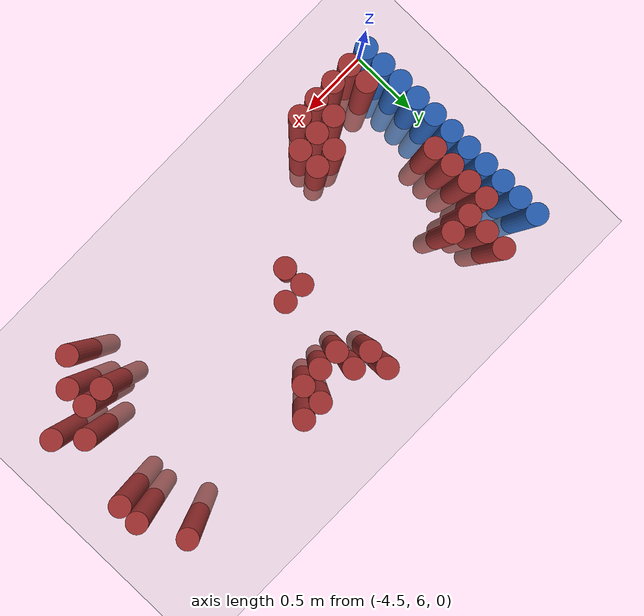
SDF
<sdf version="1.6">
 <world name="default">
  <model name="ground_plane">
   <static>1</static>
   <link name="link">
    <collision name="collision">
     <geometry><plane><normal>0 0 1</normal><size>100 100</size></plane></geometry>
     <surface><friction><ode><mu>100</mu><mu2>50</mu2></ode></friction></surface>
    </collision>
    <visual name="visual">
     <cast_shadows>0</cast_shadows>
     <geometry><plane><normal>0 0 1</normal><size>100 100</size></plane></geometry>
     <material>
      <script><uri>file://media/materials/scripts/gazebo.material</uri><name>Gazebo/Grey</name></script>
     </material>
    </visual>
   </link>
  </model>
  <model name="unit_cylinder_102">
   <static>1</static>
   <pose>-4.425000 6.075000 0.000000 0.000000 0.000000 0.000000</pose>
   <link name="link">
    <inertial>
     <mass>1</mass>
     <inertia><ixx>0.145833</ixx><ixy>0</ixy><ixz>0</ixz><iyy>0.145833</iyy><iyz>0</iyz><izz>0.125</izz></inertia>
    </inertial>
    <collision name="collision">
     <geometry><cylinder><radius>0.075000</radius><length>1</length></cylinder></geometry>
    </collision>
    <visual name="visual">
     <geometry><cylinder><radius>0.075000</radius><length>1</length></cylinder></geometry>
     <material>
      <ambient>0.152000 0.379000 0.720000 1</ambient>
      <diffuse>0.152000 0.379000 0.720000 1</diffuse>
     </material>
     <material>
      <script><name>Gazebo/Grey</name><uri>file://media/materials/scripts/gazebo.material</uri></script>
     </material>
    </visual>
   </link>
  </model>
  <model name="unit_cylinder_103">
   <static>1</static>
   <pose>-4.425000 6.225000 0.000000 0.000000 0.000000 0.000000</pose>
   <link name="link">
    <inertial>
     <mass>1</mass>
     <inertia><ixx>0.145833</ixx><ixy>0</ixy><ixz>0</ixz><iyy>0.145833</iyy><iyz>0</iyz><izz>0.125</izz></inertia>
    </inertial>
    <collision name="collision">
     <geometry><cylinder><radius>0.075000</radius><length>1</length></cylinder></geometry>
    </collision>
    <visual name="visual">
     <geometry><cylinder><radius>0.075000</radius><length>1</length></cylinder></geometry>
     <material>
      <ambient>0.152000 0.379000 0.720000 1</ambient>
      <diffuse>0.152000 0.379000 0.720000 1</diffuse>
     </material>
     <material>
      <script><name>Gazebo/Grey</name><uri>file://media/materials/scripts/gazebo.material</uri></script>
     </material>
    </visual>
   </link>
  </model>
  <model name="unit_cylinder_104">
   <static>1</static>
   <pose>-4.425000 6.375000 0.000000 0.000000 0.000000 0.000000</pose>
   <link name="link">
    <inertial>
     <mass>1</mass>
     <inertia><ixx>0.145833</ixx><ixy>0</ixy><ixz>0</ixz><iyy>0.145833</iyy><iyz>0</iyz><izz>0.125</izz></inertia>
    </inertial>
    <collision name="collision">
     <geometry><cylinder><radius>0.075000</radius><length>1</length></cylinder></geometry>
    </collision>
    <visual name="visual">
     <geometry><cylinder><radius>0.075000</radius><length>1</length></cylinder></geometry>
     <material>
      <ambient>0.152000 0.379000 0.720000 1</ambient>
      <diffuse>0.152000 0.379000 0.720000 1</diffuse>
     </material>
     <material>
      <script><name>Gazebo/Grey</name><uri>file://media/materials/scripts/gazebo.material</uri></script>
     </material>
    </visual>
   </link>
  </model>
  <model name="unit_cylinder_105">
   <static>1</static>
   <pose>-4.425000 6.525000 0.000000 0.000000 0.000000 0.000000</pose>
   <link name="link">
    <inertial>
     <mass>1</mass>
     <inertia><ixx>0.145833</ixx><ixy>0</ixy><ixz>0</ixz><iyy>0.145833</iyy><iyz>0</iyz><izz>0.125</izz></inertia>
    </inertial>
    <collision name="collision">
     <geometry><cylinder><radius>0.075000</radius><length>1</length></cylinder></geometry>
    </collision>
    <visual name="visual">
     <geometry><cylinder><radius>0.075000</radius><length>1</length></cylinder></geometry>
     <material>
      <ambient>0.152000 0.379000 0.720000 1</ambient>
      <diffuse>0.152000 0.379000 0.720000 1</diffuse>
     </material>
     <material>
      <script><name>Gazebo/Grey</name><uri>file://media/materials/scripts/gazebo.material</uri></script>
     </material>
    </visual>
   </link>
  </model>
  <model name="unit_cylinder_106">
   <static>1</static>
   <pose>-4.425000 6.675000 0.000000 0.000000 0.000000 0.000000</pose>
   <link name="link">
    <inertial>
     <mass>1</mass>
     <inertia><ixx>0.145833</ixx><ixy>0</ixy><ixz>0</ixz><iyy>0.145833</iyy><iyz>0</iyz><izz>0.125</izz></inertia>
    </inertial>
    <collision name="collision">
     <geometry><cylinder><radius>0.075000</radius><length>1</length></cylinder></geometry>
    </collision>
    <visual name="visual">
     <geometry><cylinder><radius>0.075000</radius><length>1</length></cylinder></geometry>
     <material>
      <ambient>0.152000 0.379000 0.720000 1</ambient>
      <diffuse>0.152000 0.379000 0.720000 1</diffuse>
     </material>
     <material>
      <script><name>Gazebo/Grey</name><uri>file://media/materials/scripts/gazebo.material</uri></script>
     </material>
    </visual>
   </link>
  </model>
  <model name="unit_cylinder_107">
   <static>1</static>
   <pose>-4.425000 6.825000 0.000000 0.000000 0.000000 0.000000</pose>
   <link name="link">
    <inertial>
     <mass>1</mass>
     <inertia><ixx>0.145833</ixx><ixy>0</ixy><ixz>0</ixz><iyy>0.145833</iyy><iyz>0</iyz><izz>0.125</izz></inertia>
    </inertial>
    <collision name="collision">
     <geometry><cylinder><radius>0.075000</radius><length>1</length></cylinder></geometry>
    </collision>
    <visual name="visual">
     <geometry><cylinder><radius>0.075000</radius><length>1</length></cylinder></geometry>
     <material>
      <ambient>0.152000 0.379000 0.720000 1</ambient>
      <diffuse>0.152000 0.379000 0.720000 1</diffuse>
     </material>
     <material>
      <script><name>Gazebo/Grey</name><uri>file://media/materials/scripts/gazebo.material</uri></script>
     </material>
    </visual>
   </link>
  </model>
  <model name="unit_cylinder_108">
   <static>1</static>
   <pose>-4.425000 6.975000 0.000000 0.000000 0.000000 0.000000</pose>
   <link name="link">
    <inertial>
     <mass>1</mass>
     <inertia><ixx>0.145833</ixx><ixy>0</ixy><ixz>0</ixz><iyy>0.145833</iyy><iyz>0</iyz><izz>0.125</izz></inertia>
    </inertial>
    <collision name="collision">
     <geometry><cylinder><radius>0.075000</radius><length>1</length></cylinder></geometry>
    </collision>
    <visual name="visual">
     <geometry><cylinder><radius>0.075000</radius><length>1</length></cylinder></geometry>
     <material>
      <ambient>0.152000 0.379000 0.720000 1</ambient>
      <diffuse>0.152000 0.379000 0.720000 1</diffuse>
     </material>
     <material>
      <script><name>Gazebo/Grey</name><uri>file://media/materials/scripts/gazebo.material</uri></script>
     </material>
    </visual>
   </link>
  </model>
  <model name="unit_cylinder_109">
   <static>1</static>
   <pose>-4.425000 7.125000 0.000000 0.000000 0.000000 0.000000</pose>
   <link name="link">
    <inertial>
     <mass>1</mass>
     <inertia><ixx>0.145833</ixx><ixy>0</ixy><ixz>0</ixz><iyy>0.145833</iyy><iyz>0</iyz><izz>0.125</izz></inertia>
    </inertial>
    <collision name="collision">
     <geometry><cylinder><radius>0.075000</radius><length>1</length></cylinder></geometry>
    </collision>
    <visual name="visual">
     <geometry><cylinder><radius>0.075000</radius><length>1</length></cylinder></geometry>
     <material>
      <ambient>0.152000 0.379000 0.720000 1</ambient>
      <diffuse>0.152000 0.379000 0.720000 1</diffuse>
     </material>
     <material>
      <script><name>Gazebo/Grey</name><uri>file://media/materials/scripts/gazebo.material</uri></script>
     </material>
    </visual>
   </link>
  </model>
  <model name="unit_cylinder_110">
   <static>1</static>
   <pose>-4.425000 7.275000 0.000000 0.000000 0.000000 0.000000</pose>
   <link name="link">
    <inertial>
     <mass>1</mass>
     <inertia><ixx>0.145833</ixx><ixy>0</ixy><ixz>0</ixz><iyy>0.145833</iyy><iyz>0</iyz><izz>0.125</izz></inertia>
    </inertial>
    <collision name="collision">
     <geometry><cylinder><radius>0.075000</radius><length>1</length></cylinder></geometry>
    </collision>
    <visual name="visual">
     <geometry><cylinder><radius>0.075000</radius><length>1</length></cylinder></geometry>
     <material>
      <ambient>0.152000 0.379000 0.720000 1</ambient>
      <diffuse>0.152000 0.379000 0.720000 1</diffuse>
     </material>
     <material>
      <script><name>Gazebo/Grey</name><uri>file://media/materials/scripts/gazebo.material</uri></script>
     </material>
    </visual>
   </link>
  </model>
  <model name="unit_cylinder_111">
   <static>1</static>
   <pose>-4.425000 7.425000 0.000000 0.000000 0.000000 0.000000</pose>
   <link name="link">
    <inertial>
     <mass>1</mass>
     <inertia><ixx>0.145833</ixx><ixy>0</ixy><ixz>0</ixz><iyy>0.145833</iyy><iyz>0</iyz><izz>0.125</izz></inertia>
    </inertial>
    <collision name="collision">
     <geometry><cylinder><radius>0.075000</radius><length>1</length></cylinder></geometry>
    </collision>
    <visual name="visual">
     <geometry><cylinder><radius>0.075000</radius><length>1</length></cylinder></geometry>
     <material>
      <ambient>0.152000 0.379000 0.720000 1</ambient>
      <diffuse>0.152000 0.379000 0.720000 1</diffuse>
     </material>
     <material>
      <script><name>Gazebo/Grey</name><uri>file://media/materials/scripts/gazebo.material</uri></script>
     </material>
    </visual>
   </link>
  </model>
  <model name="unit_cylinder_112">
   <static>1</static>
   <pose>-4.425000 7.575000 0.000000 0.000000 0.000000 0.000000</pose>
   <link name="link">
    <inertial>
     <mass>1</mass>
     <inertia><ixx>0.145833</ixx><ixy>0</ixy><ixz>0</ixz><iyy>0.145833</iyy><iyz>0</iyz><izz>0.125</izz></inertia>
    </inertial>
    <collision name="collision">
     <geometry><cylinder><radius>0.075000</radius><length>1</length></cylinder></geometry>
    </collision>
    <visual name="visual">
     <geometry><cylinder><radius>0.075000</radius><length>1</length></cylinder></geometry>
     <material>
      <ambient>0.152000 0.379000 0.720000 1</ambient>
      <diffuse>0.152000 0.379000 0.720000 1</diffuse>
     </material>
     <material>
      <script><name>Gazebo/Grey</name><uri>file://media/materials/scripts/gazebo.material</uri></script>
     </material>
    </visual>
   </link>
  </model>
  <model name="unit_cylinder_127">
   <static>1</static>
   <pose>-4.275000 6.075000 0.000000 0.000000 0.000000 0.000000</pose>
   <link name="link">
    <inertial>
     <mass>1</mass>
     <inertia><ixx>0.145833</ixx><ixy>0</ixy><ixz>0</ixz><iyy>0.145833</iyy><iyz>0</iyz><izz>0.125</izz></inertia>
    </inertial>
    <collision name="collision">
     <geometry><cylinder><radius>0.075000</radius><length>1</length></cylinder></geometry>
    </collision>
    <visual name="visual">
     <geometry><cylinder><radius>0.075000</radius><length>1</length></cylinder></geometry>
     <material>
      <ambient>0.648000 0.192000 0.192000 1</ambient>
      <diffuse>0.648000 0.192000 0.192000 1</diffuse>
     </material>
     <material>
      <script><name>Gazebo/Grey</name><uri>file://media/materials/scripts/gazebo.material</uri></script>
     </material>
    </visual>
   </link>
  </model>
  <model name="unit_cylinder_128">
   <static>1</static>
   <pose>-4.275000 6.225000 0.000000 0.000000 0.000000 0.000000</pose>
   <link name="link">
    <inertial>
     <mass>1</mass>
     <inertia><ixx>0.145833</ixx><ixy>0</ixy><ixz>0</ixz><iyy>0.145833</iyy><iyz>0</iyz><izz>0.125</izz></inertia>
    </inertial>
    <collision name="collision">
     <geometry><cylinder><radius>0.075000</radius><length>1</length></cylinder></geometry>
    </collision>
    <visual name="visual">
     <geometry><cylinder><radius>0.075000</radius><length>1</length></cylinder></geometry>
     <material>
      <ambient>0.648000 0.192000 0.192000 1</ambient>
      <diffuse>0.648000 0.192000 0.192000 1</diffuse>
     </material>
     <material>
      <script><name>Gazebo/Grey</name><uri>file://media/materials/scripts/gazebo.material</uri></script>
     </material>
    </visual>
   </link>
  </model>
  <model name="unit_cylinder_129">
   <static>1</static>
   <pose>-4.275000 6.825000 0.000000 0.000000 0.000000 0.000000</pose>
   <link name="link">
    <inertial>
     <mass>1</mass>
     <inertia><ixx>0.145833</ixx><ixy>0</ixy><ixz>0</ixz><iyy>0.145833</iyy><iyz>0</iyz><izz>0.125</izz></inertia>
    </inertial>
    <collision name="collision">
     <geometry><cylinder><radius>0.075000</radius><length>1</length></cylinder></geometry>
    </collision>
    <visual name="visual">
     <geometry><cylinder><radius>0.075000</radius><length>1</length></cylinder></geometry>
     <material>
      <ambient>0.648000 0.192000 0.192000 1</ambient>
      <diffuse>0.648000 0.192000 0.192000 1</diffuse>
     </material>
     <material>
      <script><name>Gazebo/Grey</name><uri>file://media/materials/scripts/gazebo.material</uri></script>
     </material>
    </visual>
   </link>
  </model>
  <model name="unit_cylinder_130">
   <static>1</static>
   <pose>-4.275000 6.975000 0.000000 0.000000 0.000000 0.000000</pose>
   <link name="link">
    <inertial>
     <mass>1</mass>
     <inertia><ixx>0.145833</ixx><ixy>0</ixy><ixz>0</ixz><iyy>0.145833</iyy><iyz>0</iyz><izz>0.125</izz></inertia>
    </inertial>
    <collision name="collision">
     <geometry><cylinder><radius>0.075000</radius><length>1</length></cylinder></geometry>
    </collision>
    <visual name="visual">
     <geometry><cylinder><radius>0.075000</radius><length>1</length></cylinder></geometry>
     <material>
      <ambient>0.648000 0.192000 0.192000 1</ambient>
      <diffuse>0.648000 0.192000 0.192000 1</diffuse>
     </material>
     <material>
      <script><name>Gazebo/Grey</name><uri>file://media/materials/scripts/gazebo.material</uri></script>
     </material>
    </visual>
   </link>
  </model>
  <model name="unit_cylinder_131">
   <static>1</static>
   <pose>-4.275000 7.125000 0.000000 0.000000 0.000000 0.000000</pose>
   <link name="link">
    <inertial>
     <mass>1</mass>
     <inertia><ixx>0.145833</ixx><ixy>0</ixy><ixz>0</ixz><iyy>0.145833</iyy><iyz>0</iyz><izz>0.125</izz></inertia>
    </inertial>
    <collision name="collision">
     <geometry><cylinder><radius>0.075000</radius><length>1</length></cylinder></geometry>
    </collision>
    <visual name="visual">
     <geometry><cylinder><radius>0.075000</radius><length>1</length></cylinder></geometry>
     <material>
      <ambient>0.648000 0.192000 0.192000 1</ambient>
      <diffuse>0.648000 0.192000 0.192000 1</diffuse>
     </material>
     <material>
      <script><name>Gazebo/Grey</name><uri>file://media/materials/scripts/gazebo.material</uri></script>
     </material>
    </visual>
   </link>
  </model>
  <model name="unit_cylinder_132">
   <static>1</static>
   <pose>-4.275000 7.275000 0.000000 0.000000 0.000000 0.000000</pose>
   <link name="link">
    <inertial>
     <mass>1</mass>
     <inertia><ixx>0.145833</ixx><ixy>0</ixy><ixz>0</ixz><iyy>0.145833</iyy><iyz>0</iyz><izz>0.125</izz></inertia>
    </inertial>
    <collision name="collision">
     <geometry><cylinder><radius>0.075000</radius><length>1</length></cylinder></geometry>
    </collision>
    <visual name="visual">
     <geometry><cylinder><radius>0.075000</radius><length>1</length></cylinder></geometry>
     <material>
      <ambient>0.648000 0.192000 0.192000 1</ambient>
      <diffuse>0.648000 0.192000 0.192000 1</diffuse>
     </material>
     <material>
      <script><name>Gazebo/Grey</name><uri>file://media/materials/scripts/gazebo.material</uri></script>
     </material>
    </visual>
   </link>
  </model>
  <model name="unit_cylinder_145">
   <static>1</static>
   <pose>-4.125000 6.075000 0.000000 0.000000 0.000000 0.000000</pose>
   <link name="link">
    <inertial>
     <mass>1</mass>
     <inertia><ixx>0.145833</ixx><ixy>0</ixy><ixz>0</ixz><iyy>0.145833</iyy><iyz>0</iyz><izz>0.125</izz></inertia>
    </inertial>
    <collision name="collision">
     <geometry><cylinder><radius>0.075000</radius><length>1</length></cylinder></geometry>
    </collision>
    <visual name="visual">
     <geometry><cylinder><radius>0.075000</radius><length>1</length></cylinder></geometry>
     <material>
      <ambient>0.648000 0.192000 0.192000 1</ambient>
      <diffuse>0.648000 0.192000 0.192000 1</diffuse>
     </material>
     <material>
      <script><name>Gazebo/Grey</name><uri>file://media/materials/scripts/gazebo.material</uri></script>
     </material>
    </visual>
   </link>
  </model>
  <model name="unit_cylinder_146">
   <static>1</static>
   <pose>-4.125000 7.275000 0.000000 0.000000 0.000000 0.000000</pose>
   <link name="link">
    <inertial>
     <mass>1</mass>
     <inertia><ixx>0.145833</ixx><ixy>0</ixy><ixz>0</ixz><iyy>0.145833</iyy><iyz>0</iyz><izz>0.125</izz></inertia>
    </inertial>
    <collision name="collision">
     <geometry><cylinder><radius>0.075000</radius><length>1</length></cylinder></geometry>
    </collision>
    <visual name="visual">
     <geometry><cylinder><radius>0.075000</radius><length>1</length></cylinder></geometry>
     <material>
      <ambient>0.648000 0.192000 0.192000 1</ambient>
      <diffuse>0.648000 0.192000 0.192000 1</diffuse>
     </material>
     <material>
      <script><name>Gazebo/Grey</name><uri>file://media/materials/scripts/gazebo.material</uri></script>
     </material>
    </visual>
   </link>
  </model>
  <model name="unit_cylinder_147">
   <static>1</static>
   <pose>-4.125000 7.425000 0.000000 0.000000 0.000000 0.000000</pose>
   <link name="link">
    <inertial>
     <mass>1</mass>
     <inertia><ixx>0.145833</ixx><ixy>0</ixy><ixz>0</ixz><iyy>0.145833</iyy><iyz>0</iyz><izz>0.125</izz></inertia>
    </inertial>
    <collision name="collision">
     <geometry><cylinder><radius>0.075000</radius><length>1</length></cylinder></geometry>
    </collision>
    <visual name="visual">
     <geometry><cylinder><radius>0.075000</radius><length>1</length></cylinder></geometry>
     <material>
      <ambient>0.648000 0.192000 0.192000 1</ambient>
      <diffuse>0.648000 0.192000 0.192000 1</diffuse>
     </material>
     <material>
      <script><name>Gazebo/Grey</name><uri>file://media/materials/scripts/gazebo.material</uri></script>
     </material>
    </visual>
   </link>
  </model>
  <model name="unit_cylinder_148">
   <static>1</static>
   <pose>-4.125000 7.575000 0.000000 0.000000 0.000000 0.000000</pose>
   <link name="link">
    <inertial>
     <mass>1</mass>
     <inertia><ixx>0.145833</ixx><ixy>0</ixy><ixz>0</ixz><iyy>0.145833</iyy><iyz>0</iyz><izz>0.125</izz></inertia>
    </inertial>
    <collision name="collision">
     <geometry><cylinder><radius>0.075000</radius><length>1</length></cylinder></geometry>
    </collision>
    <visual name="visual">
     <geometry><cylinder><radius>0.075000</radius><length>1</length></cylinder></geometry>
     <material>
      <ambient>0.648000 0.192000 0.192000 1</ambient>
      <diffuse>0.648000 0.192000 0.192000 1</diffuse>
     </material>
     <material>
      <script><name>Gazebo/Grey</name><uri>file://media/materials/scripts/gazebo.material</uri></script>
     </material>
    </visual>
   </link>
  </model>
  <model name="unit_cylinder_158">
   <static>1</static>
   <pose>-3.975000 6.075000 0.000000 0.000000 0.000000 0.000000</pose>
   <link name="link">
    <inertial>
     <mass>1</mass>
     <inertia><ixx>0.145833</ixx><ixy>0</ixy><ixz>0</ixz><iyy>0.145833</iyy><iyz>0</iyz><izz>0.125</izz></inertia>
    </inertial>
    <collision name="collision">
     <geometry><cylinder><radius>0.075000</radius><length>1</length></cylinder></geometry>
    </collision>
    <visual name="visual">
     <geometry><cylinder><radius>0.075000</radius><length>1</length></cylinder></geometry>
     <material>
      <ambient>0.648000 0.192000 0.192000 1</ambient>
      <diffuse>0.648000 0.192000 0.192000 1</diffuse>
     </material>
     <material>
      <script><name>Gazebo/Grey</name><uri>file://media/materials/scripts/gazebo.material</uri></script>
     </material>
    </visual>
   </link>
  </model>
  <model name="unit_cylinder_159">
   <static>1</static>
   <pose>-3.975000 6.225000 0.000000 0.000000 0.000000 0.000000</pose>
   <link name="link">
    <inertial>
     <mass>1</mass>
     <inertia><ixx>0.145833</ixx><ixy>0</ixy><ixz>0</ixz><iyy>0.145833</iyy><iyz>0</iyz><izz>0.125</izz></inertia>
    </inertial>
    <collision name="collision">
     <geometry><cylinder><radius>0.075000</radius><length>1</length></cylinder></geometry>
    </collision>
    <visual name="visual">
     <geometry><cylinder><radius>0.075000</radius><length>1</length></cylinder></geometry>
     <material>
      <ambient>0.648000 0.192000 0.192000 1</ambient>
      <diffuse>0.648000 0.192000 0.192000 1</diffuse>
     </material>
     <material>
      <script><name>Gazebo/Grey</name><uri>file://media/materials/scripts/gazebo.material</uri></script>
     </material>
    </visual>
   </link>
  </model>
  <model name="unit_cylinder_160">
   <static>1</static>
   <pose>-3.975000 7.275000 0.000000 0.000000 0.000000 0.000000</pose>
   <link name="link">
    <inertial>
     <mass>1</mass>
     <inertia><ixx>0.145833</ixx><ixy>0</ixy><ixz>0</ixz><iyy>0.145833</iyy><iyz>0</iyz><izz>0.125</izz></inertia>
    </inertial>
    <collision name="collision">
     <geometry><cylinder><radius>0.075000</radius><length>1</length></cylinder></geometry>
    </collision>
    <visual name="visual">
     <geometry><cylinder><radius>0.075000</radius><length>1</length></cylinder></geometry>
     <material>
      <ambient>0.648000 0.192000 0.192000 1</ambient>
      <diffuse>0.648000 0.192000 0.192000 1</diffuse>
     </material>
     <material>
      <script><name>Gazebo/Grey</name><uri>file://media/materials/scripts/gazebo.material</uri></script>
     </material>
    </visual>
   </link>
  </model>
  <model name="unit_cylinder_164">
   <static>1</static>
   <pose>-3.825000 6.075000 0.000000 0.000000 0.000000 0.000000</pose>
   <link name="link">
    <inertial>
     <mass>1</mass>
     <inertia><ixx>0.145833</ixx><ixy>0</ixy><ixz>0</ixz><iyy>0.145833</iyy><iyz>0</iyz><izz>0.125</izz></inertia>
    </inertial>
    <collision name="collision">
     <geometry><cylinder><radius>0.075000</radius><length>1</length></cylinder></geometry>
    </collision>
    <visual name="visual">
     <geometry><cylinder><radius>0.075000</radius><length>1</length></cylinder></geometry>
     <material>
      <ambient>0.648000 0.192000 0.192000 1</ambient>
      <diffuse>0.648000 0.192000 0.192000 1</diffuse>
     </material>
     <material>
      <script><name>Gazebo/Grey</name><uri>file://media/materials/scripts/gazebo.material</uri></script>
     </material>
    </visual>
   </link>
  </model>
  <model name="unit_cylinder_165">
   <static>1</static>
   <pose>-3.825000 6.225000 0.000000 0.000000 0.000000 0.000000</pose>
   <link name="link">
    <inertial>
     <mass>1</mass>
     <inertia><ixx>0.145833</ixx><ixy>0</ixy><ixz>0</ixz><iyy>0.145833</iyy><iyz>0</iyz><izz>0.125</izz></inertia>
    </inertial>
    <collision name="collision">
     <geometry><cylinder><radius>0.075000</radius><length>1</length></cylinder></geometry>
    </collision>
    <visual name="visual">
     <geometry><cylinder><radius>0.075000</radius><length>1</length></cylinder></geometry>
     <material>
      <ambient>0.648000 0.192000 0.192000 1</ambient>
      <diffuse>0.648000 0.192000 0.192000 1</diffuse>
     </material>
     <material>
      <script><name>Gazebo/Grey</name><uri>file://media/materials/scripts/gazebo.material</uri></script>
     </material>
    </visual>
   </link>
  </model>
  <model name="unit_cylinder_166">
   <static>1</static>
   <pose>-3.825000 6.375000 0.000000 0.000000 0.000000 0.000000</pose>
   <link name="link">
    <inertial>
     <mass>1</mass>
     <inertia><ixx>0.145833</ixx><ixy>0</ixy><ixz>0</ixz><iyy>0.145833</iyy><iyz>0</iyz><izz>0.125</izz></inertia>
    </inertial>
    <collision name="collision">
     <geometry><cylinder><radius>0.075000</radius><length>1</length></cylinder></geometry>
    </collision>
    <visual name="visual">
     <geometry><cylinder><radius>0.075000</radius><length>1</length></cylinder></geometry>
     <material>
      <ambient>0.648000 0.192000 0.192000 1</ambient>
      <diffuse>0.648000 0.192000 0.192000 1</diffuse>
     </material>
     <material>
      <script><name>Gazebo/Grey</name><uri>file://media/materials/scripts/gazebo.material</uri></script>
     </material>
    </visual>
   </link>
  </model>
  <model name="unit_cylinder_169">
   <static>1</static>
   <pose>-3.675000 6.225000 0.000000 0.000000 0.000000 0.000000</pose>
   <link name="link">
    <inertial>
     <mass>1</mass>
     <inertia><ixx>0.145833</ixx><ixy>0</ixy><ixz>0</ixz><iyy>0.145833</iyy><iyz>0</iyz><izz>0.125</izz></inertia>
    </inertial>
    <collision name="collision">
     <geometry><cylinder><radius>0.075000</radius><length>1</length></cylinder></geometry>
    </collision>
    <visual name="visual">
     <geometry><cylinder><radius>0.075000</radius><length>1</length></cylinder></geometry>
     <material>
      <ambient>0.648000 0.192000 0.192000 1</ambient>
      <diffuse>0.648000 0.192000 0.192000 1</diffuse>
     </material>
     <material>
      <script><name>Gazebo/Grey</name><uri>file://media/materials/scripts/gazebo.material</uri></script>
     </material>
    </visual>
   </link>
  </model>
  <model name="unit_cylinder_170">
   <static>1</static>
   <pose>-3.675000 6.375000 0.000000 0.000000 0.000000 0.000000</pose>
   <link name="link">
    <inertial>
     <mass>1</mass>
     <inertia><ixx>0.145833</ixx><ixy>0</ixy><ixz>0</ixz><iyy>0.145833</iyy><iyz>0</iyz><izz>0.125</izz></inertia>
    </inertial>
    <collision name="collision">
     <geometry><cylinder><radius>0.075000</radius><length>1</length></cylinder></geometry>
    </collision>
    <visual name="visual">
     <geometry><cylinder><radius>0.075000</radius><length>1</length></cylinder></geometry>
     <material>
      <ambient>0.648000 0.192000 0.192000 1</ambient>
      <diffuse>0.648000 0.192000 0.192000 1</diffuse>
     </material>
     <material>
      <script><name>Gazebo/Grey</name><uri>file://media/materials/scripts/gazebo.material</uri></script>
     </material>
    </visual>
   </link>
  </model>
  <model name="unit_cylinder_186">
   <static>1</static>
   <pose>-3.075000 6.675000 0.000000 0.000000 0.000000 0.000000</pose>
   <link name="link">
    <inertial>
     <mass>1</mass>
     <inertia><ixx>0.145833</ixx><ixy>0</ixy><ixz>0</ixz><iyy>0.145833</iyy><iyz>0</iyz><izz>0.125</izz></inertia>
    </inertial>
    <collision name="collision">
     <geometry><cylinder><radius>0.075000</radius><length>1</length></cylinder></geometry>
    </collision>
    <visual name="visual">
     <geometry><cylinder><radius>0.075000</radius><length>1</length></cylinder></geometry>
     <material>
      <ambient>0.648000 0.192000 0.192000 1</ambient>
      <diffuse>0.648000 0.192000 0.192000 1</diffuse>
     </material>
     <material>
      <script><name>Gazebo/Grey</name><uri>file://media/materials/scripts/gazebo.material</uri></script>
     </material>
    </visual>
   </link>
  </model>
  <model name="unit_cylinder_187">
   <static>1</static>
   <pose>-3.075000 6.825000 0.000000 0.000000 0.000000 0.000000</pose>
   <link name="link">
    <inertial>
     <mass>1</mass>
     <inertia><ixx>0.145833</ixx><ixy>0</ixy><ixz>0</ixz><iyy>0.145833</iyy><iyz>0</iyz><izz>0.125</izz></inertia>
    </inertial>
    <collision name="collision">
     <geometry><cylinder><radius>0.075000</radius><length>1</length></cylinder></geometry>
    </collision>
    <visual name="visual">
     <geometry><cylinder><radius>0.075000</radius><length>1</length></cylinder></geometry>
     <material>
      <ambient>0.648000 0.192000 0.192000 1</ambient>
      <diffuse>0.648000 0.192000 0.192000 1</diffuse>
     </material>
     <material>
      <script><name>Gazebo/Grey</name><uri>file://media/materials/scripts/gazebo.material</uri></script>
     </material>
    </visual>
   </link>
  </model>
  <model name="unit_cylinder_188">
   <static>1</static>
   <pose>-3.075000 7.425000 0.000000 0.000000 0.000000 0.000000</pose>
   <link name="link">
    <inertial>
     <mass>1</mass>
     <inertia><ixx>0.145833</ixx><ixy>0</ixy><ixz>0</ixz><iyy>0.145833</iyy><iyz>0</iyz><izz>0.125</izz></inertia>
    </inertial>
    <collision name="collision">
     <geometry><cylinder><radius>0.075000</radius><length>1</length></cylinder></geometry>
    </collision>
    <visual name="visual">
     <geometry><cylinder><radius>0.075000</radius><length>1</length></cylinder></geometry>
     <material>
      <ambient>0.648000 0.192000 0.192000 1</ambient>
      <diffuse>0.648000 0.192000 0.192000 1</diffuse>
     </material>
     <material>
      <script><name>Gazebo/Grey</name><uri>file://media/materials/scripts/gazebo.material</uri></script>
     </material>
    </visual>
   </link>
  </model>
  <model name="unit_cylinder_189">
   <static>1</static>
   <pose>-3.075000 7.575000 0.000000 0.000000 0.000000 0.000000</pose>
   <link name="link">
    <inertial>
     <mass>1</mass>
     <inertia><ixx>0.145833</ixx><ixy>0</ixy><ixz>0</ixz><iyy>0.145833</iyy><iyz>0</iyz><izz>0.125</izz></inertia>
    </inertial>
    <collision name="collision">
     <geometry><cylinder><radius>0.075000</radius><length>1</length></cylinder></geometry>
    </collision>
    <visual name="visual">
     <geometry><cylinder><radius>0.075000</radius><length>1</length></cylinder></geometry>
     <material>
      <ambient>0.648000 0.192000 0.192000 1</ambient>
      <diffuse>0.648000 0.192000 0.192000 1</diffuse>
     </material>
     <material>
      <script><name>Gazebo/Grey</name><uri>file://media/materials/scripts/gazebo.material</uri></script>
     </material>
    </visual>
   </link>
  </model>
  <model name="unit_cylinder_193">
   <static>1</static>
   <pose>-2.925000 6.825000 0.000000 0.000000 0.000000 0.000000</pose>
   <link name="link">
    <inertial>
     <mass>1</mass>
     <inertia><ixx>0.145833</ixx><ixy>0</ixy><ixz>0</ixz><iyy>0.145833</iyy><iyz>0</iyz><izz>0.125</izz></inertia>
    </inertial>
    <collision name="collision">
     <geometry><cylinder><radius>0.075000</radius><length>1</length></cylinder></geometry>
    </collision>
    <visual name="visual">
     <geometry><cylinder><radius>0.075000</radius><length>1</length></cylinder></geometry>
     <material>
      <ambient>0.648000 0.192000 0.192000 1</ambient>
      <diffuse>0.648000 0.192000 0.192000 1</diffuse>
     </material>
     <material>
      <script><name>Gazebo/Grey</name><uri>file://media/materials/scripts/gazebo.material</uri></script>
     </material>
    </visual>
   </link>
  </model>
  <model name="unit_cylinder_194">
   <static>1</static>
   <pose>-2.925000 7.275000 0.000000 0.000000 0.000000 0.000000</pose>
   <link name="link">
    <inertial>
     <mass>1</mass>
     <inertia><ixx>0.145833</ixx><ixy>0</ixy><ixz>0</ixz><iyy>0.145833</iyy><iyz>0</iyz><izz>0.125</izz></inertia>
    </inertial>
    <collision name="collision">
     <geometry><cylinder><radius>0.075000</radius><length>1</length></cylinder></geometry>
    </collision>
    <visual name="visual">
     <geometry><cylinder><radius>0.075000</radius><length>1</length></cylinder></geometry>
     <material>
      <ambient>0.648000 0.192000 0.192000 1</ambient>
      <diffuse>0.648000 0.192000 0.192000 1</diffuse>
     </material>
     <material>
      <script><name>Gazebo/Grey</name><uri>file://media/materials/scripts/gazebo.material</uri></script>
     </material>
    </visual>
   </link>
  </model>
  <model name="unit_cylinder_195">
   <static>1</static>
   <pose>-2.925000 7.425000 0.000000 0.000000 0.000000 0.000000</pose>
   <link name="link">
    <inertial>
     <mass>1</mass>
     <inertia><ixx>0.145833</ixx><ixy>0</ixy><ixz>0</ixz><iyy>0.145833</iyy><iyz>0</iyz><izz>0.125</izz></inertia>
    </inertial>
    <collision name="collision">
     <geometry><cylinder><radius>0.075000</radius><length>1</length></cylinder></geometry>
    </collision>
    <visual name="visual">
     <geometry><cylinder><radius>0.075000</radius><length>1</length></cylinder></geometry>
     <material>
      <ambient>0.648000 0.192000 0.192000 1</ambient>
      <diffuse>0.648000 0.192000 0.192000 1</diffuse>
     </material>
     <material>
      <script><name>Gazebo/Grey</name><uri>file://media/materials/scripts/gazebo.material</uri></script>
     </material>
    </visual>
   </link>
  </model>
  <model name="unit_cylinder_202">
   <static>1</static>
   <pose>-2.775000 7.275000 0.000000 0.000000 0.000000 0.000000</pose>
   <link name="link">
    <inertial>
     <mass>1</mass>
     <inertia><ixx>0.145833</ixx><ixy>0</ixy><ixz>0</ixz><iyy>0.145833</iyy><iyz>0</iyz><izz>0.125</izz></inertia>
    </inertial>
    <collision name="collision">
     <geometry><cylinder><radius>0.075000</radius><length>1</length></cylinder></geometry>
    </collision>
    <visual name="visual">
     <geometry><cylinder><radius>0.075000</radius><length>1</length></cylinder></geometry>
     <material>
      <ambient>0.648000 0.192000 0.192000 1</ambient>
      <diffuse>0.648000 0.192000 0.192000 1</diffuse>
     </material>
     <material>
      <script><name>Gazebo/Grey</name><uri>file://media/materials/scripts/gazebo.material</uri></script>
     </material>
    </visual>
   </link>
  </model>
  <model name="unit_cylinder_211">
   <static>1</static>
   <pose>-2.625000 7.275000 0.000000 0.000000 0.000000 0.000000</pose>
   <link name="link">
    <inertial>
     <mass>1</mass>
     <inertia><ixx>0.145833</ixx><ixy>0</ixy><ixz>0</ixz><iyy>0.145833</iyy><iyz>0</iyz><izz>0.125</izz></inertia>
    </inertial>
    <collision name="collision">
     <geometry><cylinder><radius>0.075000</radius><length>1</length></cylinder></geometry>
    </collision>
    <visual name="visual">
     <geometry><cylinder><radius>0.075000</radius><length>1</length></cylinder></geometry>
     <material>
      <ambient>0.648000 0.192000 0.192000 1</ambient>
      <diffuse>0.648000 0.192000 0.192000 1</diffuse>
     </material>
     <material>
      <script><name>Gazebo/Grey</name><uri>file://media/materials/scripts/gazebo.material</uri></script>
     </material>
    </visual>
   </link>
  </model>
  <model name="unit_cylinder_212">
   <static>1</static>
   <pose>-2.625000 7.425000 0.000000 0.000000 0.000000 0.000000</pose>
   <link name="link">
    <inertial>
     <mass>1</mass>
     <inertia><ixx>0.145833</ixx><ixy>0</ixy><ixz>0</ixz><iyy>0.145833</iyy><iyz>0</iyz><izz>0.125</izz></inertia>
    </inertial>
    <collision name="collision">
     <geometry><cylinder><radius>0.075000</radius><length>1</length></cylinder></geometry>
    </collision>
    <visual name="visual">
     <geometry><cylinder><radius>0.075000</radius><length>1</length></cylinder></geometry>
     <material>
      <ambient>0.648000 0.192000 0.192000 1</ambient>
      <diffuse>0.648000 0.192000 0.192000 1</diffuse>
     </material>
     <material>
      <script><name>Gazebo/Grey</name><uri>file://media/materials/scripts/gazebo.material</uri></script>
     </material>
    </visual>
   </link>
  </model>
  <model name="unit_cylinder_216">
   <static>1</static>
   <pose>-2.475000 7.425000 0.000000 0.000000 0.000000 0.000000</pose>
   <link name="link">
    <inertial>
     <mass>1</mass>
     <inertia><ixx>0.145833</ixx><ixy>0</ixy><ixz>0</ixz><iyy>0.145833</iyy><iyz>0</iyz><izz>0.125</izz></inertia>
    </inertial>
    <collision name="collision">
     <geometry><cylinder><radius>0.075000</radius><length>1</length></cylinder></geometry>
    </collision>
    <visual name="visual">
     <geometry><cylinder><radius>0.075000</radius><length>1</length></cylinder></geometry>
     <material>
      <ambient>0.648000 0.192000 0.192000 1</ambient>
      <diffuse>0.648000 0.192000 0.192000 1</diffuse>
     </material>
     <material>
      <script><name>Gazebo/Grey</name><uri>file://media/materials/scripts/gazebo.material</uri></script>
     </material>
    </visual>
   </link>
  </model>
  <model name="unit_cylinder_218">
   <static>1</static>
   <pose>-1.725000 6.075000 0.000000 0.000000 0.000000 0.000000</pose>
   <link name="link">
    <inertial>
     <mass>1</mass>
     <inertia><ixx>0.145833</ixx><ixy>0</ixy><ixz>0</ixz><iyy>0.145833</iyy><iyz>0</iyz><izz>0.125</izz></inertia>
    </inertial>
    <collision name="collision">
     <geometry><cylinder><radius>0.075000</radius><length>1</length></cylinder></geometry>
    </collision>
    <visual name="visual">
     <geometry><cylinder><radius>0.075000</radius><length>1</length></cylinder></geometry>
     <material>
      <ambient>0.648000 0.192000 0.192000 1</ambient>
      <diffuse>0.648000 0.192000 0.192000 1</diffuse>
     </material>
     <material>
      <script><name>Gazebo/Grey</name><uri>file://media/materials/scripts/gazebo.material</uri></script>
     </material>
    </visual>
   </link>
  </model>
  <model name="unit_cylinder_219">
   <static>1</static>
   <pose>-1.725000 6.375000 0.000000 0.000000 0.000000 0.000000</pose>
   <link name="link">
    <inertial>
     <mass>1</mass>
     <inertia><ixx>0.145833</ixx><ixy>0</ixy><ixz>0</ixz><iyy>0.145833</iyy><iyz>0</iyz><izz>0.125</izz></inertia>
    </inertial>
    <collision name="collision">
     <geometry><cylinder><radius>0.075000</radius><length>1</length></cylinder></geometry>
    </collision>
    <visual name="visual">
     <geometry><cylinder><radius>0.075000</radius><length>1</length></cylinder></geometry>
     <material>
      <ambient>0.648000 0.192000 0.192000 1</ambient>
      <diffuse>0.648000 0.192000 0.192000 1</diffuse>
     </material>
     <material>
      <script><name>Gazebo/Grey</name><uri>file://media/materials/scripts/gazebo.material</uri></script>
     </material>
    </visual>
   </link>
  </model>
  <model name="unit_cylinder_220">
   <static>1</static>
   <pose>-1.575000 6.225000 0.000000 0.000000 0.000000 0.000000</pose>
   <link name="link">
    <inertial>
     <mass>1</mass>
     <inertia><ixx>0.145833</ixx><ixy>0</ixy><ixz>0</ixz><iyy>0.145833</iyy><iyz>0</iyz><izz>0.125</izz></inertia>
    </inertial>
    <collision name="collision">
     <geometry><cylinder><radius>0.075000</radius><length>1</length></cylinder></geometry>
    </collision>
    <visual name="visual">
     <geometry><cylinder><radius>0.075000</radius><length>1</length></cylinder></geometry>
     <material>
      <ambient>0.648000 0.192000 0.192000 1</ambient>
      <diffuse>0.648000 0.192000 0.192000 1</diffuse>
     </material>
     <material>
      <script><name>Gazebo/Grey</name><uri>file://media/materials/scripts/gazebo.material</uri></script>
     </material>
    </visual>
   </link>
  </model>
  <model name="unit_cylinder_221">
   <static>1</static>
   <pose>-1.575000 6.375000 0.000000 0.000000 0.000000 0.000000</pose>
   <link name="link">
    <inertial>
     <mass>1</mass>
     <inertia><ixx>0.145833</ixx><ixy>0</ixy><ixz>0</ixz><iyy>0.145833</iyy><iyz>0</iyz><izz>0.125</izz></inertia>
    </inertial>
    <collision name="collision">
     <geometry><cylinder><radius>0.075000</radius><length>1</length></cylinder></geometry>
    </collision>
    <visual name="visual">
     <geometry><cylinder><radius>0.075000</radius><length>1</length></cylinder></geometry>
     <material>
      <ambient>0.648000 0.192000 0.192000 1</ambient>
      <diffuse>0.648000 0.192000 0.192000 1</diffuse>
     </material>
     <material>
      <script><name>Gazebo/Grey</name><uri>file://media/materials/scripts/gazebo.material</uri></script>
     </material>
    </visual>
   </link>
  </model>
  <model name="unit_cylinder_222">
   <static>1</static>
   <pose>-1.425000 6.525000 0.000000 0.000000 0.000000 0.000000</pose>
   <link name="link">
    <inertial>
     <mass>1</mass>
     <inertia><ixx>0.145833</ixx><ixy>0</ixy><ixz>0</ixz><iyy>0.145833</iyy><iyz>0</iyz><izz>0.125</izz></inertia>
    </inertial>
    <collision name="collision">
     <geometry><cylinder><radius>0.075000</radius><length>1</length></cylinder></geometry>
    </collision>
    <visual name="visual">
     <geometry><cylinder><radius>0.075000</radius><length>1</length></cylinder></geometry>
     <material>
      <ambient>0.648000 0.192000 0.192000 1</ambient>
      <diffuse>0.648000 0.192000 0.192000 1</diffuse>
     </material>
     <material>
      <script><name>Gazebo/Grey</name><uri>file://media/materials/scripts/gazebo.material</uri></script>
     </material>
    </visual>
   </link>
  </model>
  <model name="unit_cylinder_223">
   <static>1</static>
   <pose>-1.425000 7.425000 0.000000 0.000000 0.000000 0.000000</pose>
   <link name="link">
    <inertial>
     <mass>1</mass>
     <inertia><ixx>0.145833</ixx><ixy>0</ixy><ixz>0</ixz><iyy>0.145833</iyy><iyz>0</iyz><izz>0.125</izz></inertia>
    </inertial>
    <collision name="collision">
     <geometry><cylinder><radius>0.075000</radius><length>1</length></cylinder></geometry>
    </collision>
    <visual name="visual">
     <geometry><cylinder><radius>0.075000</radius><length>1</length></cylinder></geometry>
     <material>
      <ambient>0.648000 0.192000 0.192000 1</ambient>
      <diffuse>0.648000 0.192000 0.192000 1</diffuse>
     </material>
     <material>
      <script><name>Gazebo/Grey</name><uri>file://media/materials/scripts/gazebo.material</uri></script>
     </material>
    </visual>
   </link>
  </model>
  <model name="unit_cylinder_225">
   <static>1</static>
   <pose>-1.275000 6.375000 0.000000 0.000000 0.000000 0.000000</pose>
   <link name="link">
    <inertial>
     <mass>1</mass>
     <inertia><ixx>0.145833</ixx><ixy>0</ixy><ixz>0</ixz><iyy>0.145833</iyy><iyz>0</iyz><izz>0.125</izz></inertia>
    </inertial>
    <collision name="collision">
     <geometry><cylinder><radius>0.075000</radius><length>1</length></cylinder></geometry>
    </collision>
    <visual name="visual">
     <geometry><cylinder><radius>0.075000</radius><length>1</length></cylinder></geometry>
     <material>
      <ambient>0.648000 0.192000 0.192000 1</ambient>
      <diffuse>0.648000 0.192000 0.192000 1</diffuse>
     </material>
     <material>
      <script><name>Gazebo/Grey</name><uri>file://media/materials/scripts/gazebo.material</uri></script>
     </material>
    </visual>
   </link>
  </model>
  <model name="unit_cylinder_226">
   <static>1</static>
   <pose>-1.275000 6.975000 0.000000 0.000000 0.000000 0.000000</pose>
   <link name="link">
    <inertial>
     <mass>1</mass>
     <inertia><ixx>0.145833</ixx><ixy>0</ixy><ixz>0</ixz><iyy>0.145833</iyy><iyz>0</iyz><izz>0.125</izz></inertia>
    </inertial>
    <collision name="collision">
     <geometry><cylinder><radius>0.075000</radius><length>1</length></cylinder></geometry>
    </collision>
    <visual name="visual">
     <geometry><cylinder><radius>0.075000</radius><length>1</length></cylinder></geometry>
     <material>
      <ambient>0.648000 0.192000 0.192000 1</ambient>
      <diffuse>0.648000 0.192000 0.192000 1</diffuse>
     </material>
     <material>
      <script><name>Gazebo/Grey</name><uri>file://media/materials/scripts/gazebo.material</uri></script>
     </material>
    </visual>
   </link>
  </model>
  <model name="unit_cylinder_227">
   <static>1</static>
   <pose>-1.275000 7.125000 0.000000 0.000000 0.000000 0.000000</pose>
   <link name="link">
    <inertial>
     <mass>1</mass>
     <inertia><ixx>0.145833</ixx><ixy>0</ixy><ixz>0</ixz><iyy>0.145833</iyy><iyz>0</iyz><izz>0.125</izz></inertia>
    </inertial>
    <collision name="collision">
     <geometry><cylinder><radius>0.075000</radius><length>1</length></cylinder></geometry>
    </collision>
    <visual name="visual">
     <geometry><cylinder><radius>0.075000</radius><length>1</length></cylinder></geometry>
     <material>
      <ambient>0.648000 0.192000 0.192000 1</ambient>
      <diffuse>0.648000 0.192000 0.192000 1</diffuse>
     </material>
     <material>
      <script><name>Gazebo/Grey</name><uri>file://media/materials/scripts/gazebo.material</uri></script>
     </material>
    </visual>
   </link>
  </model>
 </world>
</sdf>
